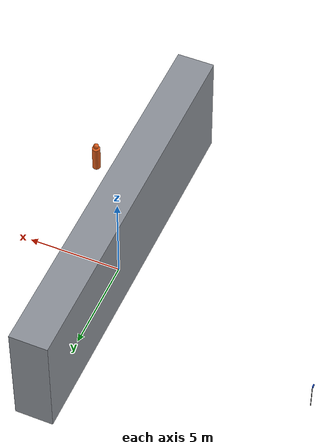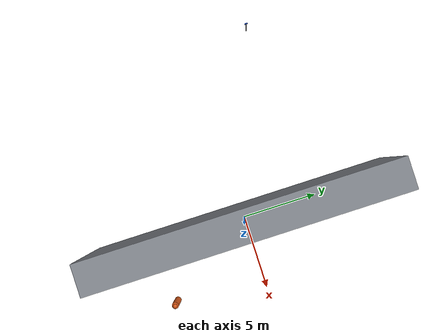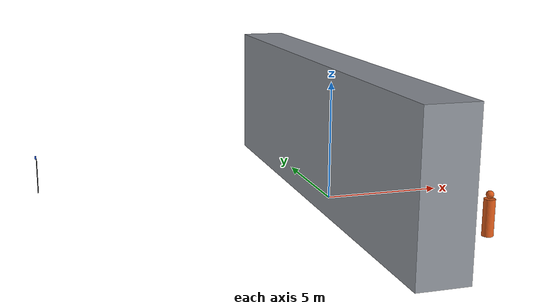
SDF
<sdf version="1.9">
 <world name="coop_field">
  <physics type="ode">
   <max_step_size>0.004</max_step_size>
   <real_time_factor>1.0</real_time_factor>
   <real_time_update_rate>250</real_time_update_rate>
  </physics>
  <gravity>0 0 -9.8</gravity>
  <magnetic_field>6e-06 2.3e-05 -4.2e-05</magnetic_field>
  <atmosphere type="adiabatic"/>
  <scene>
   <grid>false</grid>
   <ambient>0.4 0.4 0.4 1</ambient>
   <background>0.7 0.7 0.7 1</background>
   <shadows>false</shadows>
  </scene>
  <model name="ground_plane">
   <static>true</static>
   <link name="link">
    <collision name="collision">
     <geometry><plane><normal>0 0 1</normal><size>1 1</size></plane></geometry>
    </collision>
    <inertial>
     <mass>1</mass>
     <inertia><ixx>1</ixx><ixy>0</ixy><ixz>0</ixz><iyy>1</iyy><iyz>0</iyz><izz>1</izz></inertia>
    </inertial>
   </link>
  </model>
  <model name="building">
   <static>true</static>
   <pose>0 0 3 0 0 0</pose>
   <link name="link">
    <collision name="collision"><geometry><box><size>2 20 6</size></box></geometry></collision>
    <visual name="visual">
     <geometry><box><size>2 20 6</size></box></geometry>
     <material><diffuse>0.55 0.57 0.6 1</diffuse><ambient>0.55 0.57 0.6 1</ambient></material>
    </visual>
   </link>
  </model>
  <include><uri>model://device</uri><name>device</name><pose>-12 4 0 0 0 0</pose></include>
  <include><uri>model://entity_person</uri><name>entity</name><pose>4 -6 0 0 0 0</pose></include>
  <light name="sunUTC" type="directional">
   <pose>0 0 500 0 -0 0</pose>
   <cast_shadows>false</cast_shadows>
   <intensity>1</intensity>
   <direction>0.001 0.625 -0.78</direction>
   <diffuse>0.904 0.904 0.904 1</diffuse>
   <specular>0.271 0.271 0.271 1</specular>
   <attenuation><range>2000</range><linear>0</linear><constant>1</constant><quadratic>0</quadratic></attenuation>
   <spot><inner_angle>0</inner_angle><outer_angle>0</outer_angle><falloff>0</falloff></spot>
  </light>
  <spherical_coordinates>
   <surface_model>EARTH_WGS84</surface_model>
   <world_frame_orientation>ENU</world_frame_orientation>
   <latitude_deg>47.397971057728974</latitude_deg>
   <longitude_deg>8.546163739800146</longitude_deg>
   <elevation>0</elevation>
  </spherical_coordinates>
 </world>
</sdf>

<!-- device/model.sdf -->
<sdf version="1.9">
  <model name="device">
    <static>true</static>
    <link name="link">
      <visual name="post">
        <pose>0 0 0.78 0 0 0</pose>
        <geometry>
          <cylinder>
            <radius>0.02</radius>
            <length>1.56</length>
          </cylinder>
        </geometry>
        <material>
          <diffuse>0.15 0.15 0.15 1</diffuse>
          <ambient>0.15 0.15 0.15 1</ambient>
        </material>
      </visual>
      <visual name="body">
        <pose>-0.03 0 1.6 0 0 0</pose>
        <geometry>
          <box>
            <size>0.06 0.18 0.12</size>
          </box>
        </geometry>
        <material>
          <diffuse>0.1 0.3 0.8 1</diffuse>
          <ambient>0.1 0.3 0.8 1</ambient>
        </material>
      </visual>
      <sensor name="camera" type="camera">
        <pose>0 0 1.6 0 0 0</pose>
        <always_on>1</always_on>
        <update_rate>15</update_rate>
        <visualize>false</visualize>
        <topic>device/camera/image</topic>
        <camera>
          <horizontal_fov>1.2217</horizontal_fov>
          <image>
            <width>640</width>
            <height>480</height>
            <format>R8G8B8</format>
          </image>
          <clip>
            <near>0.1</near>
            <far>120</far>
          </clip>
        </camera>
      </sensor>
    </link>
  </model>
</sdf>

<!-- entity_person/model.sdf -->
<sdf version="1.9">
  <model name="entity_person">
    <static>true</static>
    <link name="link">
      <visual name="body">
        <pose>0 0 0.72 0 0 0</pose>
        <geometry>
          <cylinder>
            <radius>0.22</radius>
            <length>1.44</length>
          </cylinder>
        </geometry>
        <material>
          <diffuse>0.85 0.35 0.1 1</diffuse>
          <ambient>0.85 0.35 0.1 1</ambient>
        </material>
      </visual>
      <visual name="head">
        <pose>0 0 1.6 0 0 0</pose>
        <geometry>
          <sphere>
            <radius>0.15</radius>
          </sphere>
        </geometry>
        <material>
          <diffuse>0.85 0.35 0.1 1</diffuse>
          <ambient>0.85 0.35 0.1 1</ambient>
        </material>
      </visual>
    </link>
  </model>
</sdf>
